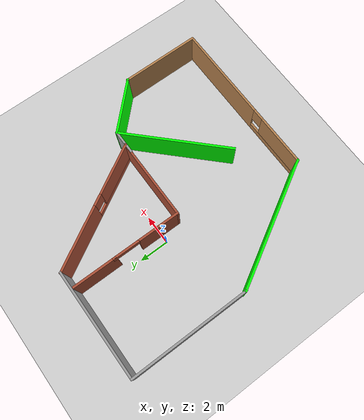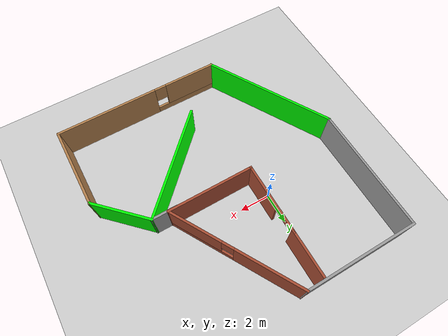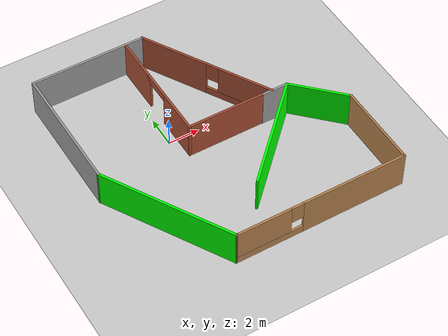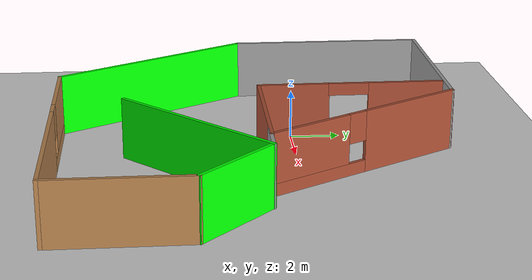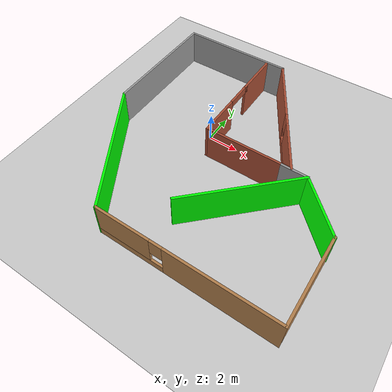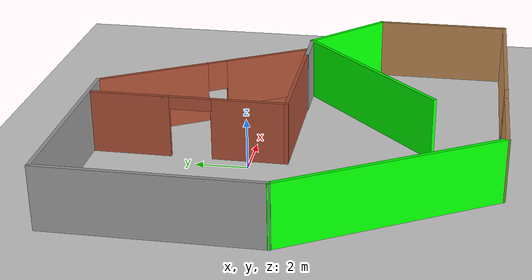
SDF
<sdf version="1.7">
 <world name="default">
  <model name="ground_plane">
   <static>1</static>
   <link name="link">
    <collision name="collision">
     <geometry><plane><normal>0 0 1</normal><size>100 100</size></plane></geometry>
     <surface>
      <contact><collide_bitmask>65535</collide_bitmask></contact>
      <friction><ode><mu>100</mu><mu2>50</mu2></ode></friction>
     </surface>
    </collision>
    <visual name="visual">
     <cast_shadows>0</cast_shadows>
     <geometry><plane><normal>0 0 1</normal><size>100 100</size></plane></geometry>
     <material>
      <script><uri>file://media/materials/scripts/gazebo.material</uri><name>Gazebo/Grey</name></script>
     </material>
    </visual>
   </link>
  </model>
  <model name="workshop_0">
   <link name="Wall_0">
    <pose>4.23833 0.190199 0 0 -0 0</pose>
    <visual name="Wall_0_Visual">
     <pose>0 0 1.25 0 -0 0</pose>
     <geometry><box><size>1.75 0.15 2.5</size></box></geometry>
     <material>
      <script><uri>file://media/materials/scripts/gazebo.material</uri><name>Gazebo/Grey</name></script>
      <ambient>1 1 1 1</ambient>
      <shader type="pixel"/>
     </material>
     <meta><layer>0</layer></meta>
    </visual>
    <collision name="Wall_0_Collision">
     <pose>0 0 1.25 0 -0 0</pose>
     <geometry><box><size>1.75 0.15 2.5</size></box></geometry>
     <surface>
      <friction>
       <ode><mu>1</mu><mu2>1</mu2><fdir1>0 0 0</fdir1><slip1>0</slip1><slip2>0</slip2></ode>
       <torsional>
        <coefficient>1</coefficient>
        <patch_radius>0</patch_radius>
        <surface_radius>0</surface_radius>
        <use_patch_radius>1</use_patch_radius>
        <ode><slip>0</slip></ode>
       </torsional>
      </friction>
      <bounce><restitution_coefficient>0</restitution_coefficient><threshold>1e+06</threshold></bounce>
      <contact>
       <collide_without_contact>0</collide_without_contact>
       <collide_without_contact_bitmask>1</collide_without_contact_bitmask>
       <collide_bitmask>1</collide_bitmask>
       <ode>
        <soft_cfm>0</soft_cfm>
        <soft_erp>0.2</soft_erp>
        <kp>1e+13</kp>
        <kd>1</kd>
        <max_vel>0.01</max_vel>
        <min_depth>0</min_depth>
       </ode>
       <bullet>
        <split_impulse>1</split_impulse>
        <split_impulse_penetration_threshold>-0.01</split_impulse_penetration_threshold>
        <soft_cfm>0</soft_cfm>
        <soft_erp>0.2</soft_erp>
        <kp>1e+13</kp>
        <kd>1</kd>
       </bullet>
      </contact>
     </surface>
    </collision>
   </link>
   <link name="Wall_1">
    <pose>6.39951 -1.17098 0 0 0 -0.785398</pose>
    <visual name="Wall_1_Visual">
     <pose>0 0 1.25 0 -0 0</pose>
     <geometry><box><size>4 0.15 2.5</size></box></geometry>
     <material>
      <script><uri>file://media/materials/scripts/gazebo.material</uri><name>Gazebo/Grey</name></script>
      <ambient>0 1 0 1</ambient>
      <shader type="pixel"/>
     </material>
     <meta><layer>0</layer></meta>
    </visual>
    <collision name="Wall_1_Collision">
     <pose>0 0 1.25 0 -0 0</pose>
     <geometry><box><size>4 0.15 2.5</size></box></geometry>
     <surface>
      <friction>
       <ode><mu>1</mu><mu2>1</mu2><fdir1>0 0 0</fdir1><slip1>0</slip1><slip2>0</slip2></ode>
       <torsional>
        <coefficient>1</coefficient>
        <patch_radius>0</patch_radius>
        <surface_radius>0</surface_radius>
        <use_patch_radius>1</use_patch_radius>
        <ode><slip>0</slip></ode>
       </torsional>
      </friction>
      <bounce><restitution_coefficient>0</restitution_coefficient><threshold>1e+06</threshold></bounce>
      <contact>
       <collide_without_contact>0</collide_without_contact>
       <collide_without_contact_bitmask>1</collide_without_contact_bitmask>
       <collide_bitmask>1</collide_bitmask>
       <ode>
        <soft_cfm>0</soft_cfm>
        <soft_erp>0.2</soft_erp>
        <kp>1e+13</kp>
        <kd>1</kd>
        <max_vel>0.01</max_vel>
        <min_depth>0</min_depth>
       </ode>
       <bullet>
        <split_impulse>1</split_impulse>
        <split_impulse_penetration_threshold>-0.01</split_impulse_penetration_threshold>
        <soft_cfm>0</soft_cfm>
        <soft_erp>0.2</soft_erp>
        <kp>1e+13</kp>
        <kd>1</kd>
       </bullet>
      </contact>
     </surface>
    </collision>
   </link>
   <link name="Wall_11">
    <pose>2.35133 -2.49681 0 0 0 -2.35619</pose>
    <visual name="Wall_11_Visual">
     <pose>0 0 1.25 0 -0 0</pose>
     <geometry><box><size>7.75 0.15 2.5</size></box></geometry>
     <material>
      <script><uri>file://media/materials/scripts/gazebo.material</uri><name>Gazebo/Grey</name></script>
      <ambient>0 1 0 1</ambient>
      <shader type="pixel"/>
     </material>
     <meta><layer>0</layer></meta>
    </visual>
    <collision name="Wall_11_Collision">
     <pose>0 0 1.25 0 -0 0</pose>
     <geometry><box><size>7.75 0.15 2.5</size></box></geometry>
     <surface>
      <friction>
       <ode><mu>1</mu><mu2>1</mu2><fdir1>0 0 0</fdir1><slip1>0</slip1><slip2>0</slip2></ode>
       <torsional>
        <coefficient>1</coefficient>
        <patch_radius>0</patch_radius>
        <surface_radius>0</surface_radius>
        <use_patch_radius>1</use_patch_radius>
        <ode><slip>0</slip></ode>
       </torsional>
      </friction>
      <bounce><restitution_coefficient>0</restitution_coefficient><threshold>1e+06</threshold></bounce>
      <contact>
       <collide_without_contact>0</collide_without_contact>
       <collide_without_contact_bitmask>1</collide_without_contact_bitmask>
       <collide_bitmask>1</collide_bitmask>
       <ode>
        <soft_cfm>0</soft_cfm>
        <soft_erp>0.2</soft_erp>
        <kp>1e+13</kp>
        <kd>1</kd>
        <max_vel>0.01</max_vel>
        <min_depth>0</min_depth>
       </ode>
       <bullet>
        <split_impulse>1</split_impulse>
        <split_impulse_penetration_threshold>-0.01</split_impulse_penetration_threshold>
        <soft_cfm>0</soft_cfm>
        <soft_erp>0.2</soft_erp>
        <kp>1e+13</kp>
        <kd>1</kd>
       </bullet>
      </contact>
     </surface>
    </collision>
   </link>
   <link name="Wall_2">
    <pose>7.76069 -5.20716 0 0 0 -1.5708</pose>
    <visual name="Wall_2_Visual">
     <pose>0 0 1.25 0 -0 0</pose>
     <geometry><box><size>5.5 0.15 2.5</size></box></geometry>
     <material>
      <script><uri>file://media/materials/scripts/gazebo.material</uri><name>Gazebo/Wood</name></script>
      <ambient>0 1 0 1</ambient>
      <shader type="pixel"/>
     </material>
     <meta><layer>0</layer></meta>
    </visual>
    <collision name="Wall_2_Collision">
     <pose>0 0 1.25 0 -0 0</pose>
     <geometry><box><size>5.5 0.15 2.5</size></box></geometry>
     <surface>
      <friction>
       <ode><mu>1</mu><mu2>1</mu2><fdir1>0 0 0</fdir1><slip1>0</slip1><slip2>0</slip2></ode>
       <torsional>
        <coefficient>1</coefficient>
        <patch_radius>0</patch_radius>
        <surface_radius>0</surface_radius>
        <use_patch_radius>1</use_patch_radius>
        <ode><slip>0</slip></ode>
       </torsional>
      </friction>
      <bounce><restitution_coefficient>0</restitution_coefficient><threshold>1e+06</threshold></bounce>
      <contact>
       <collide_without_contact>0</collide_without_contact>
       <collide_without_contact_bitmask>1</collide_without_contact_bitmask>
       <collide_bitmask>1</collide_bitmask>
       <ode>
        <soft_cfm>0</soft_cfm>
        <soft_erp>0.2</soft_erp>
        <kp>1e+13</kp>
        <kd>1</kd>
        <max_vel>0.01</max_vel>
        <min_depth>0</min_depth>
       </ode>
       <bullet>
        <split_impulse>1</split_impulse>
        <split_impulse_penetration_threshold>-0.01</split_impulse_penetration_threshold>
        <soft_cfm>0</soft_cfm>
        <soft_erp>0.2</soft_erp>
        <kp>1e+13</kp>
        <kd>1</kd>
       </bullet>
      </contact>
     </surface>
    </collision>
   </link>
   <link name="Wall_3">
    <pose>2.21069 -7.88216 0 0 -0 3.14159</pose>
    <visual name="Wall_3_Visual_0">
     <pose>-2.20816 0 1.25 0 -0 0</pose>
     <geometry><box><size>6.83369 0.15 2.5</size></box></geometry>
     <material>
      <script><uri>file://media/materials/scripts/gazebo.material</uri><name>Gazebo/Wood</name></script>
      <ambient>0 1 0 1</ambient>
      <shader type="pixel"/>
     </material>
     <meta><layer>0</layer></meta>
    </visual>
    <visual name="Wall_3_Visual_1">
     <pose>3.41684 0 0.25 0 -0 0</pose>
     <geometry><box><size>4.41631 0.15 0.5</size></box></geometry>
     <material>
      <script><uri>file://media/materials/scripts/gazebo.material</uri><name>Gazebo/Wood</name></script>
      <ambient>0 1 0 1</ambient>
      <shader type="pixel"/>
     </material>
     <meta><layer>0</layer></meta>
    </visual>
    <visual name="Wall_3_Visual_2">
     <pose>3.81684 0 1.5 0 -0 0</pose>
     <geometry><box><size>3.61631 0.15 2</size></box></geometry>
     <material>
      <script><uri>file://media/materials/scripts/gazebo.material</uri><name>Gazebo/Wood</name></script>
      <ambient>0 1 0 1</ambient>
      <shader type="pixel"/>
     </material>
     <meta><layer>0</layer></meta>
    </visual>
    <visual name="Wall_3_Visual_3">
     <pose>1.60869 0 1.9 0 -0 0</pose>
     <geometry><box><size>0.8 0.15 1.2</size></box></geometry>
     <material>
      <script><uri>file://media/materials/scripts/gazebo.material</uri><name>Gazebo/Wood</name></script>
      <ambient>0 1 0 1</ambient>
      <shader type="pixel"/>
     </material>
     <meta><layer>0</layer></meta>
    </visual>
    <collision name="Wall_3_Collision_0">
     <pose>-2.20816 0 1.25 0 -0 0</pose>
     <geometry><box><size>6.83369 0.15 2.5</size></box></geometry>
     <surface>
      <friction>
       <ode><mu>1</mu><mu2>1</mu2><fdir1>0 0 0</fdir1><slip1>0</slip1><slip2>0</slip2></ode>
       <torsional>
        <coefficient>1</coefficient>
        <patch_radius>0</patch_radius>
        <surface_radius>0</surface_radius>
        <use_patch_radius>1</use_patch_radius>
        <ode><slip>0</slip></ode>
       </torsional>
      </friction>
      <bounce><restitution_coefficient>0</restitution_coefficient><threshold>1e+06</threshold></bounce>
      <contact>
       <collide_without_contact>0</collide_without_contact>
       <collide_without_contact_bitmask>1</collide_without_contact_bitmask>
       <collide_bitmask>1</collide_bitmask>
       <ode>
        <soft_cfm>0</soft_cfm>
        <soft_erp>0.2</soft_erp>
        <kp>1e+13</kp>
        <kd>1</kd>
        <max_vel>0.01</max_vel>
        <min_depth>0</min_depth>
       </ode>
       <bullet>
        <split_impulse>1</split_impulse>
        <split_impulse_penetration_threshold>-0.01</split_impulse_penetration_threshold>
        <soft_cfm>0</soft_cfm>
        <soft_erp>0.2</soft_erp>
        <kp>1e+13</kp>
        <kd>1</kd>
       </bullet>
      </contact>
     </surface>
    </collision>
    <collision name="Wall_3_Collision_1">
     <pose>3.41684 0 0.25 0 -0 0</pose>
     <geometry><box><size>4.41631 0.15 0.5</size></box></geometry>
     <surface>
      <friction>
       <ode><mu>1</mu><mu2>1</mu2><fdir1>0 0 0</fdir1><slip1>0</slip1><slip2>0</slip2></ode>
       <torsional>
        <coefficient>1</coefficient>
        <patch_radius>0</patch_radius>
        <surface_radius>0</surface_radius>
        <use_patch_radius>1</use_patch_radius>
        <ode><slip>0</slip></ode>
       </torsional>
      </friction>
      <bounce><restitution_coefficient>0</restitution_coefficient><threshold>1e+06</threshold></bounce>
      <contact>
       <collide_without_contact>0</collide_without_contact>
       <collide_without_contact_bitmask>1</collide_without_contact_bitmask>
       <collide_bitmask>1</collide_bitmask>
       <ode>
        <soft_cfm>0</soft_cfm>
        <soft_erp>0.2</soft_erp>
        <kp>1e+13</kp>
        <kd>1</kd>
        <max_vel>0.01</max_vel>
        <min_depth>0</min_depth>
       </ode>
       <bullet>
        <split_impulse>1</split_impulse>
        <split_impulse_penetration_threshold>-0.01</split_impulse_penetration_threshold>
        <soft_cfm>0</soft_cfm>
        <soft_erp>0.2</soft_erp>
        <kp>1e+13</kp>
        <kd>1</kd>
       </bullet>
      </contact>
     </surface>
    </collision>
    <collision name="Wall_3_Collision_2">
     <pose>3.81684 0 1.5 0 -0 0</pose>
     <geometry><box><size>3.61631 0.15 2</size></box></geometry>
     <surface>
      <friction>
       <ode><mu>1</mu><mu2>1</mu2><fdir1>0 0 0</fdir1><slip1>0</slip1><slip2>0</slip2></ode>
       <torsional>
        <coefficient>1</coefficient>
        <patch_radius>0</patch_radius>
        <surface_radius>0</surface_radius>
        <use_patch_radius>1</use_patch_radius>
        <ode><slip>0</slip></ode>
       </torsional>
      </friction>
      <bounce><restitution_coefficient>0</restitution_coefficient><threshold>1e+06</threshold></bounce>
      <contact>
       <collide_without_contact>0</collide_without_contact>
       <collide_without_contact_bitmask>1</collide_without_contact_bitmask>
       <collide_bitmask>1</collide_bitmask>
       <ode>
        <soft_cfm>0</soft_cfm>
        <soft_erp>0.2</soft_erp>
        <kp>1e+13</kp>
        <kd>1</kd>
        <max_vel>0.01</max_vel>
        <min_depth>0</min_depth>
       </ode>
       <bullet>
        <split_impulse>1</split_impulse>
        <split_impulse_penetration_threshold>-0.01</split_impulse_penetration_threshold>
        <soft_cfm>0</soft_cfm>
        <soft_erp>0.2</soft_erp>
        <kp>1e+13</kp>
        <kd>1</kd>
       </bullet>
      </contact>
     </surface>
    </collision>
    <collision name="Wall_3_Collision_3">
     <pose>1.60869 0 1.9 0 -0 0</pose>
     <geometry><box><size>0.8 0.15 1.2</size></box></geometry>
     <surface>
      <friction>
       <ode><mu>1</mu><mu2>1</mu2><fdir1>0 0 0</fdir1><slip1>0</slip1><slip2>0</slip2></ode>
       <torsional>
        <coefficient>1</coefficient>
        <patch_radius>0</patch_radius>
        <surface_radius>0</surface_radius>
        <use_patch_radius>1</use_patch_radius>
        <ode><slip>0</slip></ode>
       </torsional>
      </friction>
      <bounce><restitution_coefficient>0</restitution_coefficient><threshold>1e+06</threshold></bounce>
      <contact>
       <collide_without_contact>0</collide_without_contact>
       <collide_without_contact_bitmask>1</collide_without_contact_bitmask>
       <collide_bitmask>1</collide_bitmask>
       <ode>
        <soft_cfm>0</soft_cfm>
        <soft_erp>0.2</soft_erp>
        <kp>1e+13</kp>
        <kd>1</kd>
        <max_vel>0.01</max_vel>
        <min_depth>0</min_depth>
       </ode>
       <bullet>
        <split_impulse>1</split_impulse>
        <split_impulse_penetration_threshold>-0.01</split_impulse_penetration_threshold>
        <soft_cfm>0</soft_cfm>
        <soft_erp>0.2</soft_erp>
        <kp>1e+13</kp>
        <kd>1</kd>
       </bullet>
      </contact>
     </surface>
    </collision>
   </link>
   <link name="Wall_4">
    <pose>-5.55181 -4.05 0 0 -0 2.0944</pose>
    <visual name="Wall_4_Visual">
     <pose>0 0 1.25 0 -0 0</pose>
     <geometry><box><size>9 0.15 2.5</size></box></geometry>
     <material>
      <script><uri>file://media/materials/scripts/gazebo.material</uri><name>Gazebo/Grey</name></script>
      <ambient>0 1 0 1</ambient>
      <shader type="pixel"/>
     </material>
     <meta><layer>0</layer></meta>
    </visual>
    <collision name="Wall_4_Collision">
     <pose>0 0 1.25 0 -0 0</pose>
     <geometry><box><size>9 0.15 2.5</size></box></geometry>
     <surface>
      <friction>
       <ode><mu>1</mu><mu2>1</mu2><fdir1>0 0 0</fdir1><slip1>0</slip1><slip2>0</slip2></ode>
       <torsional>
        <coefficient>1</coefficient>
        <patch_radius>0</patch_radius>
        <surface_radius>0</surface_radius>
        <use_patch_radius>1</use_patch_radius>
        <ode><slip>0</slip></ode>
       </torsional>
      </friction>
      <bounce><restitution_coefficient>0</restitution_coefficient><threshold>1e+06</threshold></bounce>
      <contact>
       <collide_without_contact>0</collide_without_contact>
       <collide_without_contact_bitmask>1</collide_without_contact_bitmask>
       <collide_bitmask>1</collide_bitmask>
       <ode>
        <soft_cfm>0</soft_cfm>
        <soft_erp>0.2</soft_erp>
        <kp>1e+13</kp>
        <kd>1</kd>
        <max_vel>0.01</max_vel>
        <min_depth>0</min_depth>
       </ode>
       <bullet>
        <split_impulse>1</split_impulse>
        <split_impulse_penetration_threshold>-0.01</split_impulse_penetration_threshold>
        <soft_cfm>0</soft_cfm>
        <soft_erp>0.2</soft_erp>
        <kp>1e+13</kp>
        <kd>1</kd>
       </bullet>
      </contact>
     </surface>
    </collision>
   </link>
   <link name="Wall_5">
    <pose>-7.76431 3.83216 0 0 -0 1.5708</pose>
    <visual name="Wall_5_Visual">
     <pose>0 0 1.25 0 -0 0</pose>
     <geometry><box><size>8.25 0.15 2.5</size></box></geometry>
     <material>
      <script><uri>file://media/materials/scripts/gazebo.material</uri><name>Gazebo/Grey</name></script>
      <ambient>1 1 1 1</ambient>
      <shader type="pixel"/>
     </material>
     <meta><layer>0</layer></meta>
    </visual>
    <collision name="Wall_5_Collision">
     <pose>0 0 1.25 0 -0 0</pose>
     <geometry><box><size>8.25 0.15 2.5</size></box></geometry>
     <surface>
      <friction>
       <ode><mu>1</mu><mu2>1</mu2><fdir1>0 0 0</fdir1><slip1>0</slip1><slip2>0</slip2></ode>
       <torsional>
        <coefficient>1</coefficient>
        <patch_radius>0</patch_radius>
        <surface_radius>0</surface_radius>
        <use_patch_radius>1</use_patch_radius>
        <ode><slip>0</slip></ode>
       </torsional>
      </friction>
      <bounce><restitution_coefficient>0</restitution_coefficient><threshold>1e+06</threshold></bounce>
      <contact>
       <collide_without_contact>0</collide_without_contact>
       <collide_without_contact_bitmask>1</collide_without_contact_bitmask>
       <collide_bitmask>1</collide_bitmask>
       <ode>
        <soft_cfm>0</soft_cfm>
        <soft_erp>0.2</soft_erp>
        <kp>1e+13</kp>
        <kd>1</kd>
        <max_vel>0.01</max_vel>
        <min_depth>0</min_depth>
       </ode>
       <bullet>
        <split_impulse>1</split_impulse>
        <split_impulse_penetration_threshold>-0.01</split_impulse_penetration_threshold>
        <soft_cfm>0</soft_cfm>
        <soft_erp>0.2</soft_erp>
        <kp>1e+13</kp>
        <kd>1</kd>
       </bullet>
      </contact>
     </surface>
    </collision>
   </link>
   <link name="Wall_6">
    <pose>-4.08931 7.88216 0 0 -0 0</pose>
    <visual name="Wall_6_Visual">
     <pose>0 0 1.25 0 -0 0</pose>
     <geometry><box><size>7.5 0.15 2.5</size></box></geometry>
     <material>
      <script><uri>file://media/materials/scripts/gazebo.material</uri><name>Gazebo/Grey</name></script>
      <ambient>1 1 1 1</ambient>
      <shader type="pixel"/>
     </material>
     <meta><layer>0</layer></meta>
    </visual>
    <collision name="Wall_6_Collision">
     <pose>0 0 1.25 0 -0 0</pose>
     <geometry><box><size>7.5 0.15 2.5</size></box></geometry>
     <surface>
      <friction>
       <ode><mu>1</mu><mu2>1</mu2><fdir1>0 0 0</fdir1><slip1>0</slip1><slip2>0</slip2></ode>
       <torsional>
        <coefficient>1</coefficient>
        <patch_radius>0</patch_radius>
        <surface_radius>0</surface_radius>
        <use_patch_radius>1</use_patch_radius>
        <ode><slip>0</slip></ode>
       </torsional>
      </friction>
      <bounce><restitution_coefficient>0</restitution_coefficient><threshold>1e+06</threshold></bounce>
      <contact>
       <collide_without_contact>0</collide_without_contact>
       <collide_without_contact_bitmask>1</collide_without_contact_bitmask>
       <collide_bitmask>1</collide_bitmask>
       <ode>
        <soft_cfm>0</soft_cfm>
        <soft_erp>0.2</soft_erp>
        <kp>1e+13</kp>
        <kd>1</kd>
        <max_vel>0.01</max_vel>
        <min_depth>0</min_depth>
       </ode>
       <bullet>
        <split_impulse>1</split_impulse>
        <split_impulse_penetration_threshold>-0.01</split_impulse_penetration_threshold>
        <soft_cfm>0</soft_cfm>
        <soft_erp>0.2</soft_erp>
        <kp>1e+13</kp>
        <kd>1</kd>
       </bullet>
      </contact>
     </surface>
    </collision>
   </link>
   <link name="Wall_7">
    <pose>1.79819 4.05 0 0 0 -1.0472</pose>
    <visual name="Wall_7_Visual_0">
     <pose>-2.22691 0 1.25 0 -0 0</pose>
     <geometry><box><size>4.54617 0.15 2.5</size></box></geometry>
     <material>
      <script><uri>file://media/materials/scripts/gazebo.material</uri><name>Gazebo/Bricks</name></script>
      <ambient>1 1 1 1</ambient>
      <shader type="pixel"/>
     </material>
     <meta><layer>0</layer></meta>
    </visual>
    <visual name="Wall_7_Visual_1">
     <pose>2.27309 0 0.25 0 -0 0</pose>
     <geometry><box><size>4.45383 0.15 0.5</size></box></geometry>
     <material>
      <script><uri>file://media/materials/scripts/gazebo.material</uri><name>Gazebo/Bricks</name></script>
      <ambient>1 1 1 1</ambient>
      <shader type="pixel"/>
     </material>
     <meta><layer>0</layer></meta>
    </visual>
    <visual name="Wall_7_Visual_2">
     <pose>2.67309 0 1.5 0 -0 0</pose>
     <geometry><box><size>3.65383 0.15 2</size></box></geometry>
     <material>
      <script><uri>file://media/materials/scripts/gazebo.material</uri><name>Gazebo/Bricks</name></script>
      <ambient>1 1 1 1</ambient>
      <shader type="pixel"/>
     </material>
     <meta><layer>0</layer></meta>
    </visual>
    <visual name="Wall_7_Visual_3">
     <pose>0.446174 0 1.9 0 -0 0</pose>
     <geometry><box><size>0.8 0.15 1.2</size></box></geometry>
     <material>
      <script><uri>file://media/materials/scripts/gazebo.material</uri><name>Gazebo/Bricks</name></script>
      <ambient>1 1 1 1</ambient>
      <shader type="pixel"/>
     </material>
     <meta><layer>0</layer></meta>
    </visual>
    <collision name="Wall_7_Collision_0">
     <pose>-2.22691 0 1.25 0 -0 0</pose>
     <geometry><box><size>4.54617 0.15 2.5</size></box></geometry>
     <surface>
      <friction>
       <ode><mu>1</mu><mu2>1</mu2><fdir1>0 0 0</fdir1><slip1>0</slip1><slip2>0</slip2></ode>
       <torsional>
        <coefficient>1</coefficient>
        <patch_radius>0</patch_radius>
        <surface_radius>0</surface_radius>
        <use_patch_radius>1</use_patch_radius>
        <ode><slip>0</slip></ode>
       </torsional>
      </friction>
      <bounce><restitution_coefficient>0</restitution_coefficient><threshold>1e+06</threshold></bounce>
      <contact>
       <collide_without_contact>0</collide_without_contact>
       <collide_without_contact_bitmask>1</collide_without_contact_bitmask>
       <collide_bitmask>1</collide_bitmask>
       <ode>
        <soft_cfm>0</soft_cfm>
        <soft_erp>0.2</soft_erp>
        <kp>1e+13</kp>
        <kd>1</kd>
        <max_vel>0.01</max_vel>
        <min_depth>0</min_depth>
       </ode>
       <bullet>
        <split_impulse>1</split_impulse>
        <split_impulse_penetration_threshold>-0.01</split_impulse_penetration_threshold>
        <soft_cfm>0</soft_cfm>
        <soft_erp>0.2</soft_erp>
        <kp>1e+13</kp>
        <kd>1</kd>
       </bullet>
      </contact>
     </surface>
    </collision>
    <collision name="Wall_7_Collision_1">
     <pose>2.27309 0 0.25 0 -0 0</pose>
     <geometry><box><size>4.45383 0.15 0.5</size></box></geometry>
     <surface>
      <friction>
       <ode><mu>1</mu><mu2>1</mu2><fdir1>0 0 0</fdir1><slip1>0</slip1><slip2>0</slip2></ode>
       <torsional>
        <coefficient>1</coefficient>
        <patch_radius>0</patch_radius>
        <surface_radius>0</surface_radius>
        <use_patch_radius>1</use_patch_radius>
        <ode><slip>0</slip></ode>
       </torsional>
      </friction>
      <bounce><restitution_coefficient>0</restitution_coefficient><threshold>1e+06</threshold></bounce>
      <contact>
       <collide_without_contact>0</collide_without_contact>
       <collide_without_contact_bitmask>1</collide_without_contact_bitmask>
       <collide_bitmask>1</collide_bitmask>
       <ode>
        <soft_cfm>0</soft_cfm>
        <soft_erp>0.2</soft_erp>
        <kp>1e+13</kp>
        <kd>1</kd>
        <max_vel>0.01</max_vel>
        <min_depth>0</min_depth>
       </ode>
       <bullet>
        <split_impulse>1</split_impulse>
        <split_impulse_penetration_threshold>-0.01</split_impulse_penetration_threshold>
        <soft_cfm>0</soft_cfm>
        <soft_erp>0.2</soft_erp>
        <kp>1e+13</kp>
        <kd>1</kd>
       </bullet>
      </contact>
     </surface>
    </collision>
    <collision name="Wall_7_Collision_2">
     <pose>2.67309 0 1.5 0 -0 0</pose>
     <geometry><box><size>3.65383 0.15 2</size></box></geometry>
     <surface>
      <friction>
       <ode><mu>1</mu><mu2>1</mu2><fdir1>0 0 0</fdir1><slip1>0</slip1><slip2>0</slip2></ode>
       <torsional>
        <coefficient>1</coefficient>
        <patch_radius>0</patch_radius>
        <surface_radius>0</surface_radius>
        <use_patch_radius>1</use_patch_radius>
        <ode><slip>0</slip></ode>
       </torsional>
      </friction>
      <bounce><restitution_coefficient>0</restitution_coefficient><threshold>1e+06</threshold></bounce>
      <contact>
       <collide_without_contact>0</collide_without_contact>
       <collide_without_contact_bitmask>1</collide_without_contact_bitmask>
       <collide_bitmask>1</collide_bitmask>
       <ode>
        <soft_cfm>0</soft_cfm>
        <soft_erp>0.2</soft_erp>
        <kp>1e+13</kp>
        <kd>1</kd>
        <max_vel>0.01</max_vel>
        <min_depth>0</min_depth>
       </ode>
       <bullet>
        <split_impulse>1</split_impulse>
        <split_impulse_penetration_threshold>-0.01</split_impulse_penetration_threshold>
        <soft_cfm>0</soft_cfm>
        <soft_erp>0.2</soft_erp>
        <kp>1e+13</kp>
        <kd>1</kd>
       </bullet>
      </contact>
     </surface>
    </collision>
    <collision name="Wall_7_Collision_3">
     <pose>0.446174 0 1.9 0 -0 0</pose>
     <geometry><box><size>0.8 0.15 1.2</size></box></geometry>
     <surface>
      <friction>
       <ode><mu>1</mu><mu2>1</mu2><fdir1>0 0 0</fdir1><slip1>0</slip1><slip2>0</slip2></ode>
       <torsional>
        <coefficient>1</coefficient>
        <patch_radius>0</patch_radius>
        <surface_radius>0</surface_radius>
        <use_patch_radius>1</use_patch_radius>
        <ode><slip>0</slip></ode>
       </torsional>
      </friction>
      <bounce><restitution_coefficient>0</restitution_coefficient><threshold>1e+06</threshold></bounce>
      <contact>
       <collide_without_contact>0</collide_without_contact>
       <collide_without_contact_bitmask>1</collide_without_contact_bitmask>
       <collide_bitmask>1</collide_bitmask>
       <ode>
        <soft_cfm>0</soft_cfm>
        <soft_erp>0.2</soft_erp>
        <kp>1e+13</kp>
        <kd>1</kd>
        <max_vel>0.01</max_vel>
        <min_depth>0</min_depth>
       </ode>
       <bullet>
        <split_impulse>1</split_impulse>
        <split_impulse_penetration_threshold>-0.01</split_impulse_penetration_threshold>
        <soft_cfm>0</soft_cfm>
        <soft_erp>0.2</soft_erp>
        <kp>1e+13</kp>
        <kd>1</kd>
       </bullet>
      </contact>
     </surface>
    </collision>
   </link>
   <link name="Wall_8">
    <pose>1.21069 0.217838 0 0 -0 3.14159</pose>
    <visual name="Wall_8_Visual">
     <pose>0 0 1.25 0 -0 0</pose>
     <geometry><box><size>5.75 0.15 2.5</size></box></geometry>
     <material>
      <script><uri>file://media/materials/scripts/gazebo.material</uri><name>Gazebo/Bricks</name></script>
      <ambient>1 1 1 1</ambient>
      <shader type="pixel"/>
     </material>
     <meta><layer>0</layer></meta>
    </visual>
    <collision name="Wall_8_Collision">
     <pose>0 0 1.25 0 -0 0</pose>
     <geometry><box><size>5.75 0.15 2.5</size></box></geometry>
     <surface>
      <friction>
       <ode><mu>1</mu><mu2>1</mu2><fdir1>0 0 0</fdir1><slip1>0</slip1><slip2>0</slip2></ode>
       <torsional>
        <coefficient>1</coefficient>
        <patch_radius>0</patch_radius>
        <surface_radius>0</surface_radius>
        <use_patch_radius>1</use_patch_radius>
        <ode><slip>0</slip></ode>
       </torsional>
      </friction>
      <bounce><restitution_coefficient>0</restitution_coefficient><threshold>1e+06</threshold></bounce>
      <contact>
       <collide_without_contact>0</collide_without_contact>
       <collide_without_contact_bitmask>1</collide_without_contact_bitmask>
       <collide_bitmask>1</collide_bitmask>
       <ode>
        <soft_cfm>0</soft_cfm>
        <soft_erp>0.2</soft_erp>
        <kp>1e+13</kp>
        <kd>1</kd>
        <max_vel>0.01</max_vel>
        <min_depth>0</min_depth>
       </ode>
       <bullet>
        <split_impulse>1</split_impulse>
        <split_impulse_penetration_threshold>-0.01</split_impulse_penetration_threshold>
        <soft_cfm>0</soft_cfm>
        <soft_erp>0.2</soft_erp>
        <kp>1e+13</kp>
        <kd>1</kd>
       </bullet>
      </contact>
     </surface>
    </collision>
   </link>
   <link name="Wall_9">
    <pose>-1.58931 4.01784 0 0 -0 1.5708</pose>
    <inertial>
     <mass>1</mass>
     <inertia><ixx>1</ixx><ixy>0</ixy><ixz>0</ixz><iyy>1</iyy><iyz>0</iyz><izz>1</izz></inertia>
    </inertial>
    <visual name="Wall_9_Visual_0">
     <pose>-2.3898 0 1.25 0 -0 0</pose>
     <geometry><box><size>2.9704 0.15 2.5</size></box></geometry>
     <material>
      <script><uri>file://media/materials/scripts/gazebo.material</uri><name>Gazebo/Bricks</name></script>
      <ambient>1 1 1 1</ambient>
      <shader type="pixel"><normal_map>__default__</normal_map></shader>
      <diffuse>1 1 1 1</diffuse>
      <specular>0.2 0.2 0.2 1</specular>
      <emissive>0 0 0 1</emissive>
     </material>
     <meta><layer>0</layer></meta>
    </visual>
    <visual name="Wall_9_Visual_1">
     <pose>2.2352 0 1.25 0 -0 0</pose>
     <geometry><box><size>3.0796 0.15 2.5</size></box></geometry>
     <material>
      <script><uri>file://media/materials/scripts/gazebo.material</uri><name>Gazebo/Bricks</name></script>
      <ambient>1 1 1 1</ambient>
      <shader type="pixel"><normal_map>__default__</normal_map></shader>
      <diffuse>1 1 1 1</diffuse>
      <specular>0.2 0.2 0.2 1</specular>
      <emissive>0 0 0 1</emissive>
     </material>
     <meta><layer>0</layer></meta>
    </visual>
    <visual name="Wall_9_Visual_2">
     <pose>0 0 2.25 0 -0 0</pose>
     <geometry><box><size>1.9 0.15 0.5</size></box></geometry>
     <material>
      <script><uri>file://media/materials/scripts/gazebo.material</uri><name>Gazebo/Bricks</name></script>
      <ambient>1 1 1 1</ambient>
      <shader type="pixel"><normal_map>__default__</normal_map></shader>
      <diffuse>1 1 1 1</diffuse>
      <specular>0.2 0.2 0.2 1</specular>
      <emissive>0 0 0 1</emissive>
     </material>
     <meta><layer>0</layer></meta>
    </visual>
    <collision name="Wall_9_Collision_0">
     <pose>-2.3898 0 1.25 0 -0 0</pose>
     <geometry><box><size>2.9704 0.15 2.5</size></box></geometry>
     <surface>
      <friction>
       <ode><mu>1</mu><mu2>1</mu2><fdir1>0 0 0</fdir1><slip1>0</slip1><slip2>0</slip2></ode>
       <torsional>
        <coefficient>1</coefficient>
        <patch_radius>0</patch_radius>
        <surface_radius>0</surface_radius>
        <use_patch_radius>1</use_patch_radius>
        <ode><slip>0</slip></ode>
       </torsional>
      </friction>
      <bounce><restitution_coefficient>0</restitution_coefficient><threshold>1e+06</threshold></bounce>
      <contact>
       <collide_without_contact>0</collide_without_contact>
       <collide_without_contact_bitmask>1</collide_without_contact_bitmask>
       <collide_bitmask>1</collide_bitmask>
       <ode>
        <soft_cfm>0</soft_cfm>
        <soft_erp>0.2</soft_erp>
        <kp>1e+13</kp>
        <kd>1</kd>
        <max_vel>0.01</max_vel>
        <min_depth>0</min_depth>
       </ode>
       <bullet>
        <split_impulse>1</split_impulse>
        <split_impulse_penetration_threshold>-0.01</split_impulse_penetration_threshold>
        <soft_cfm>0</soft_cfm>
        <soft_erp>0.2</soft_erp>
        <kp>1e+13</kp>
        <kd>1</kd>
       </bullet>
      </contact>
     </surface>
    </collision>
    <collision name="Wall_9_Collision_1">
     <pose>2.2352 0 1.25 0 -0 0</pose>
     <geometry><box><size>3.0796 0.15 2.5</size></box></geometry>
     <surface>
      <friction>
       <ode><mu>1</mu><mu2>1</mu2><fdir1>0 0 0</fdir1><slip1>0</slip1><slip2>0</slip2></ode>
       <torsional>
        <coefficient>1</coefficient>
        <patch_radius>0</patch_radius>
        <surface_radius>0</surface_radius>
        <use_patch_radius>1</use_patch_radius>
        <ode><slip>0</slip></ode>
       </torsional>
      </friction>
      <bounce><restitution_coefficient>0</restitution_coefficient><threshold>1e+06</threshold></bounce>
      <contact>
       <collide_without_contact>0</collide_without_contact>
       <collide_without_contact_bitmask>1</collide_without_contact_bitmask>
       <collide_bitmask>1</collide_bitmask>
       <ode>
        <soft_cfm>0</soft_cfm>
        <soft_erp>0.2</soft_erp>
        <kp>1e+13</kp>
        <kd>1</kd>
        <max_vel>0.01</max_vel>
        <min_depth>0</min_depth>
       </ode>
       <bullet>
        <split_impulse>1</split_impulse>
        <split_impulse_penetration_threshold>-0.01</split_impulse_penetration_threshold>
        <soft_cfm>0</soft_cfm>
        <soft_erp>0.2</soft_erp>
        <kp>1e+13</kp>
        <kd>1</kd>
       </bullet>
      </contact>
     </surface>
    </collision>
    <collision name="Wall_9_Collision_2">
     <pose>0 0 2.25 0 -0 0</pose>
     <geometry><box><size>1.9 0.15 0.5</size></box></geometry>
     <surface>
      <friction>
       <ode><mu>1</mu><mu2>1</mu2><fdir1>0 0 0</fdir1><slip1>0</slip1><slip2>0</slip2></ode>
       <torsional>
        <coefficient>1</coefficient>
        <patch_radius>0</patch_radius>
        <surface_radius>0</surface_radius>
        <use_patch_radius>1</use_patch_radius>
        <ode><slip>0</slip></ode>
       </torsional>
      </friction>
      <bounce><restitution_coefficient>0</restitution_coefficient><threshold>1e+06</threshold></bounce>
      <contact>
       <collide_without_contact>0</collide_without_contact>
       <collide_without_contact_bitmask>1</collide_without_contact_bitmask>
       <collide_bitmask>1</collide_bitmask>
       <ode>
        <soft_cfm>0</soft_cfm>
        <soft_erp>0.2</soft_erp>
        <kp>1e+13</kp>
        <kd>1</kd>
        <max_vel>0.01</max_vel>
        <min_depth>0</min_depth>
       </ode>
       <bullet>
        <split_impulse>1</split_impulse>
        <split_impulse_penetration_threshold>-0.01</split_impulse_penetration_threshold>
        <soft_cfm>0</soft_cfm>
        <soft_erp>0.2</soft_erp>
        <kp>1e+13</kp>
        <kd>1</kd>
       </bullet>
      </contact>
     </surface>
    </collision>
   </link>
   <static>1</static>
   <pose>2.18289 -1.61336 0 0 -0 0</pose>
  </model>
 </world>
</sdf>
